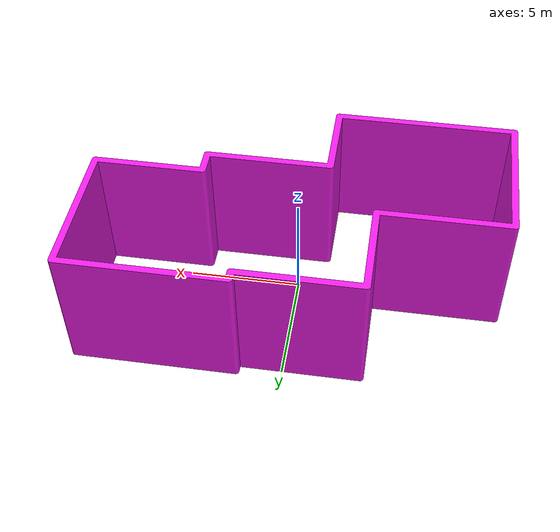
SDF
<?xml version="1.0" ?>
<sdf version="1.6">
  <model name="walls_3">
    <pose frame="">0 0 3 0 -0 0</pose>
    <static>1</static>
    <self_collide>0</self_collide>
    <allow_auto_disable>0</allow_auto_disable>
    <link name="mesh">
      <kinematic>0</kinematic>
      <gravity>1</gravity>
      <self_collide>0</self_collide>
      <collision name="collision">
        <geometry>
          <mesh>
            <uri>model://walls_3/meshes/iaJCvfcmFG.stl</uri>
            <scale>1 1 1</scale>
          </mesh>
        </geometry>
        <pose frame="">-2.0783 -6.32172 -3 0 -0 0</pose>
        <max_contacts>20</max_contacts>
      </collision>
      <visual name="visual">
        <geometry>
          <mesh>
            <uri>model://walls_3/meshes/WgEBodrpuE.stl</uri>
            <scale>1 1 1</scale>
          </mesh>
        </geometry>
        <material>
          <ambient>0.937255 0.113725 0.905882 1</ambient>
          <diffuse>0.9372549019607843 0.11372549019607843 0.9058823529411765 1</diffuse>
        </material>
        <pose frame="">-2.0783 -6.32172 -3 0 -0 0</pose>
        <cast_shadows>1</cast_shadows>
        <transparency>0.0</transparency>
      </visual>
      <pose frame="">0 0 0 0 -0 0</pose>
    </link>
  </model>
</sdf>
